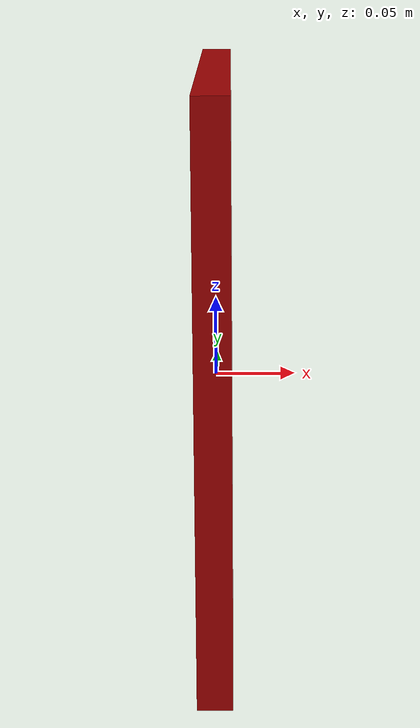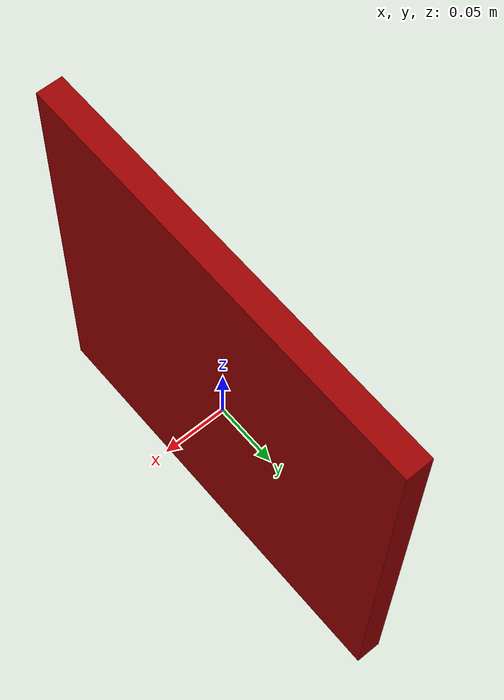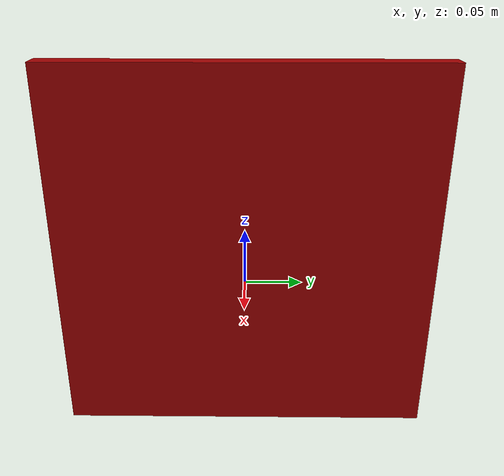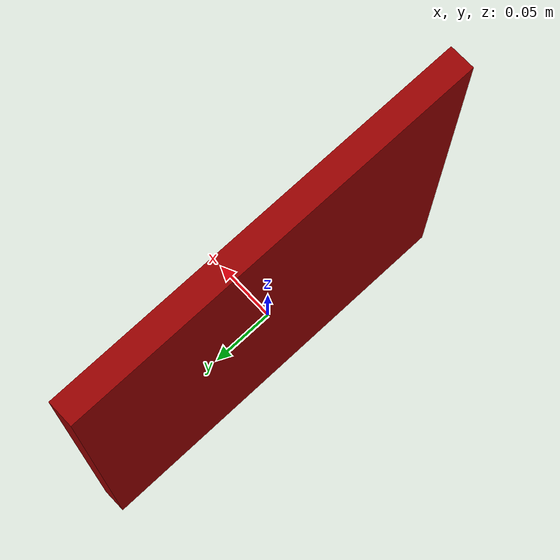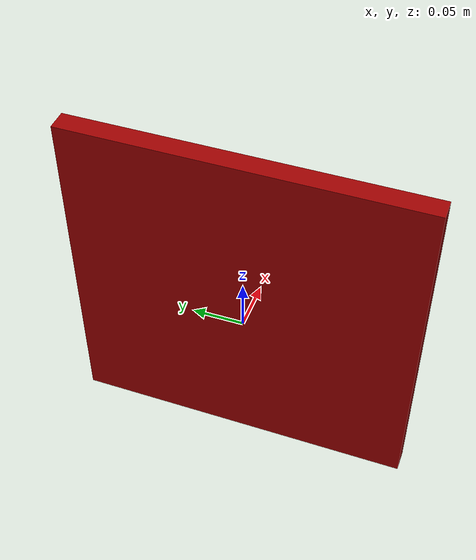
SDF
<?xml version="1.0"?>
<sdf version="1.6">
  <model name="expedit/door">
    <link name="1_link">
      <collision name="1_col">
        <geometry>
          <box>
            <size>0.02 0.335 0.335</size>
          </box>
        </geometry>
      </collision>
      <visual name="1_vis">
        <geometry>
          <box>
            <size>0.02 0.335 0.335</size>
          </box>
        </geometry>
        <material>
          <ambient>0.6 0.0 0.0 1</ambient>
        </material>
      </visual>
      <pose>0 0 0.025 0 0 0</pose>
    </link>
    <static>true</static>
  </model>
</sdf>
